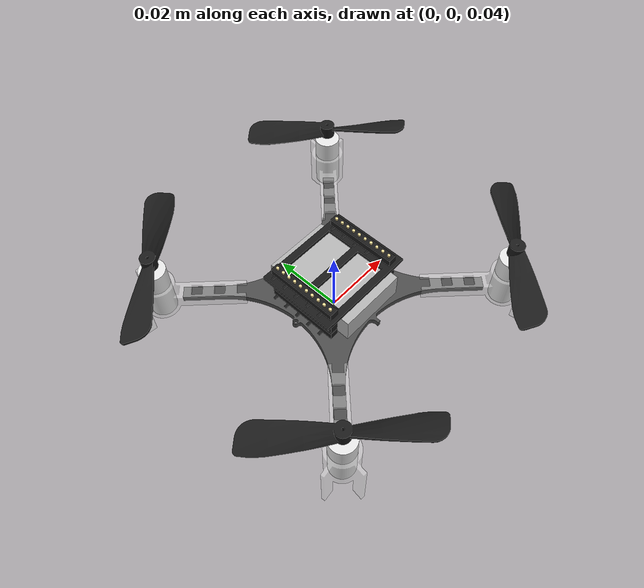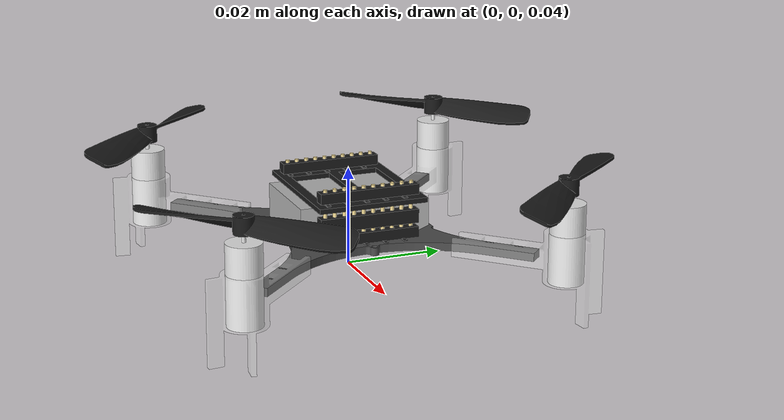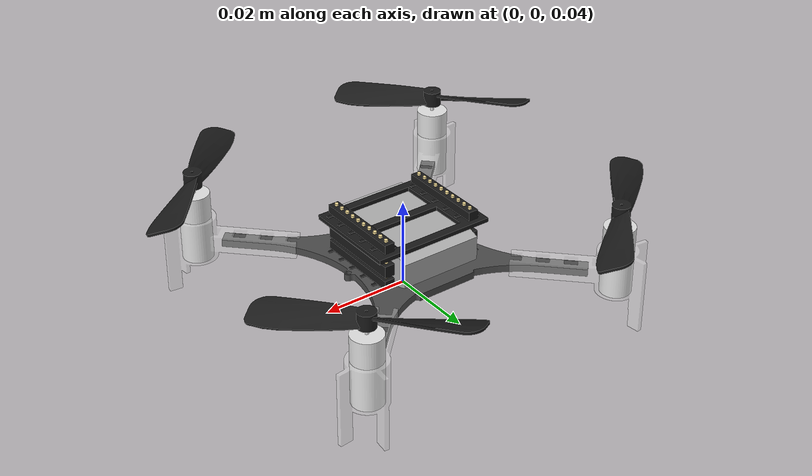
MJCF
<mujoco model="cf2">
  <compiler inertiafromgeom="false" meshdir="assets" autolimits="true" />

  <asset>
    <material name="black" rgba="0.102 0.102 0.102 1"/>
    <material name="gray" rgba="0.3 0.3 0.3 1"/>
    <material name="light-gray" rgba="0.7 0.7 0.7 1"/>
    <material name="silver" rgba="0.898 0.898 0.898 1"/>
    <material name="white" rgba="1 1 1 0.3"/>
    <material name="gold" rgba="0.969 0.878 0.6 1"/>

    <mesh name="pcb" file="cf2x/cf2x_pcb.stl" scale="0.001 0.001 0.001"/>
    <mesh name="motors" file="cf2x/cf2xL_motors.stl" scale="0.001 0.001 0.001"/>
    <mesh name="motor-holder" file="cf2x/cf2x_motor-holder.stl" scale="0.001 0.001 0.001"/>
    <mesh name="propL" file="cf2x/cf2xL_PropL.stl" scale="0.001 0.001 0.001"/>
    <mesh name="propR" file="cf2x/cf2xL_PropR.stl" scale="0.001 0.001 0.001"/>
    <mesh name="connectors" file="cf2x/cf2x_connectors.stl" scale="0.001 0.001 0.001"/>
    <mesh name="connector-pins" file="cf2x/cf2x_connector-pins.stl" scale="0.001 0.001 0.001"/>
    <mesh name="battery" file="cf2x/cf2x_battery.stl" scale="0.001 0.001 0.001"/>
    <mesh name="battery-holder" file="cf2x/cf2x_battery-holder.stl" scale="0.001 0.001 0.001"/>
  </asset>

  <default>
    <default class="cf2">
      <default class="visual">
        <geom group="2" type="mesh" contype="0" conaffinity="0" />
      </default>
      <default class="collision">
        <geom group="3" condim="1" />
      </default>
      <site group="5" />
    </default>
  </default>

  <worldbody>
    <body name="drone" pos="0 0 0.05" childclass="cf2">
      <inertial pos="0.0 0.0 0.0" mass="0.027" diaginertia="2.3951e-5 2.3951e-5 3.2347e-5" />
      <camera name="track" pos="-1 0 .5" xyaxes="0 -1 0 1 0 2" mode="trackcom" />
      <geom mesh="pcb" material="gray" class="visual" />
      <geom mesh="motors" material="silver" class="visual" />
      <geom mesh="motor-holder" material="white" class="visual" />
      <geom mesh="connectors" material="black" class="visual" />
      <geom mesh="connector-pins" material="gold" class="visual" />
      <geom mesh="battery" material="light-gray" class="visual" />
      <geom mesh="battery-holder" material="black" class="visual" />
      <!-- Collision geometry is estimated based on the visual mesh. We use a sphere for maximum
       computational efficiency with larger swarms. -->
      <geom type="sphere" size="0.055" class="collision" name="col" />
      <site name="CoM" />
      <site name="motor0" pos="0.0325 -0.0325 0.0" />
      <site name="motor1" pos="-0.0325 -0.0325 0.0" />
      <site name="motor2" pos="-0.0325 0.0325 0.0" />
      <site name="motor3" pos="0.0325 0.0325 0.0" />

      <!-- Propellers -->
      <body name="prop0" pos="0.0325 -0.0325 0.012" euler="0 0 45">
        <geom mesh="propL" material="black" class="visual"/>
      </body>
      <body name="prop1" pos="-0.0325 -0.0325 0.012" euler="0 0 135">
        <geom mesh="propR" material="black" class="visual"/>
      </body>
      <body name="prop2" pos="-0.0325 0.0325 0.012" euler="0 0 225">
        <geom mesh="propL" material="black" class="visual"/>
      </body>
      <body name="prop3" pos="0.0325 0.0325 0.012" euler="0 0 315">
        <geom mesh="propR" material="black" class="visual"/>
      </body>

    </body>
  </worldbody>

  <actuator>
    <motor gear="0 0 1 0 0 0" site="motor0" name="motor0_force" />
    <motor gear="0 0 1 0 0 0" site="motor1" name="motor1_force" />
    <motor gear="0 0 1 0 0 0" site="motor2" name="motor2_force" />
    <motor gear="0 0 1 0 0 0" site="motor3" name="motor3_force" />
    <motor gear="0 0 0 0 0 1" site="motor0" name="motor0_torque" />
    <motor gear="0 0 0 0 0 1" site="motor1" name="motor1_torque" />
    <motor gear="0 0 0 0 0 1" site="motor2" name="motor2_torque" />
    <motor gear="0 0 0 0 0 1" site="motor3" name="motor3_torque" />
  </actuator>

  <custom>
    <!-- Physical Parameters-->
    <numeric name="gravity" data="9.807" /> <!-- Munich, Germany-->
    <!-- From IROS 2022 -->
    <numeric name="mass" data="0.03454" />
    <!-- From Förster B.S. thesis -->
    <numeric name="J" data="1.68e-5 0.0    0.0
                            0.0    1.68e-5 0.0
                            0.0    0.0    2.98e-5" />
    <!-- Distance of motor from axis
         in x configuration, it's 1/sqrt(2) smaller
         arm "+" = 0.046 (from CAD); arm "x" = 0.03253 (rounded)-->
    <numeric name="arm" data="0.03253" />
    <!-- Matrix on how to mix the forces into torques, different for "x" and "+" config-->
    <numeric name="sign_matrix" data="-1 -1 -1
                                      -1  1  1
                                       1  1 -1
                                       1 -1  1" />
    <numeric name="prop_radius" data="2.31348e-2" />

    <!-- Motors and Thrust-->
    <numeric name="PWM_MIN" data="20000.0" />
    <numeric name="PWM_MAX" data="65535.0" />
    <numeric name="THRUST_MIN" data="0.02" /> <!-- in N, per motor-->
    <numeric name="THRUST_MAX" data="0.1125" /> <!-- in N, per motor-->
    <numeric name="THRUST_TAU" data="6.9235846332510365" />
    <numeric name="VMOTOR_MIN" data="1.003506695043662" /> <!-- in V-->
    <numeric name="VMOTOR_MAX" data="2.903351097106251" /> <!-- in V-->
    <numeric name="p_vmotor2thrust" data="-0.014830744918356092 0.04724465241828281 -0.01847364358025878 0.005960923942142" /> <!--Index is order-->
    <numeric name="p_vmotor2rpm" data="2828.6593993157803 6686.5508078905705" /> <!--Index is order-->
    <numeric name="kf" data="8.701227710666256e-10" />
    <numeric name="km" data="7.94e-12" /> <!-- From old identification! TODO: Replace if possible-->

  </custom>

</mujoco>
